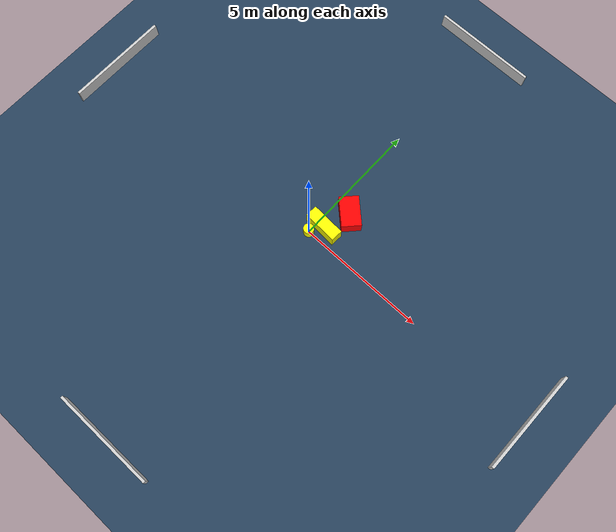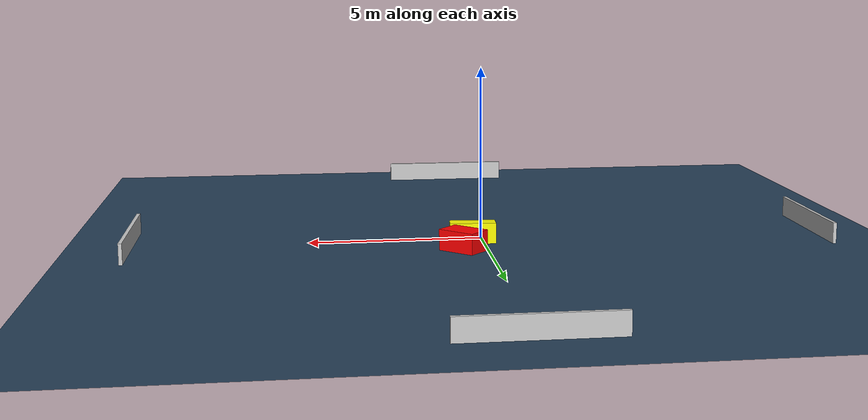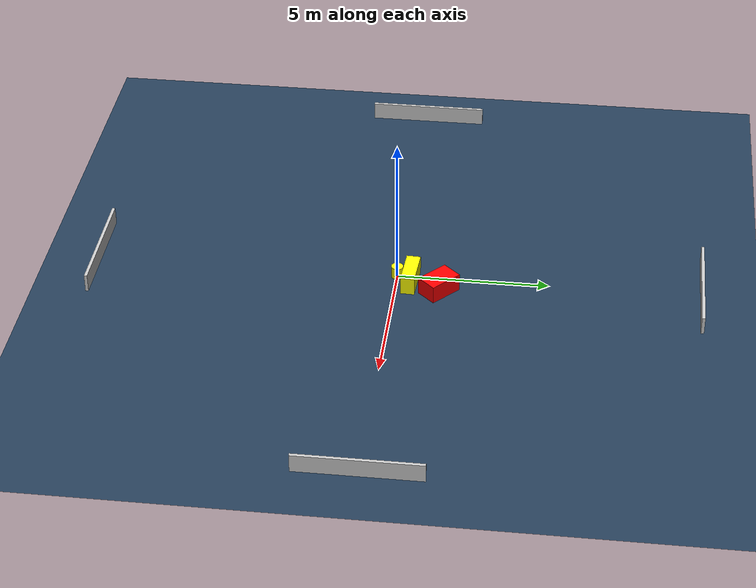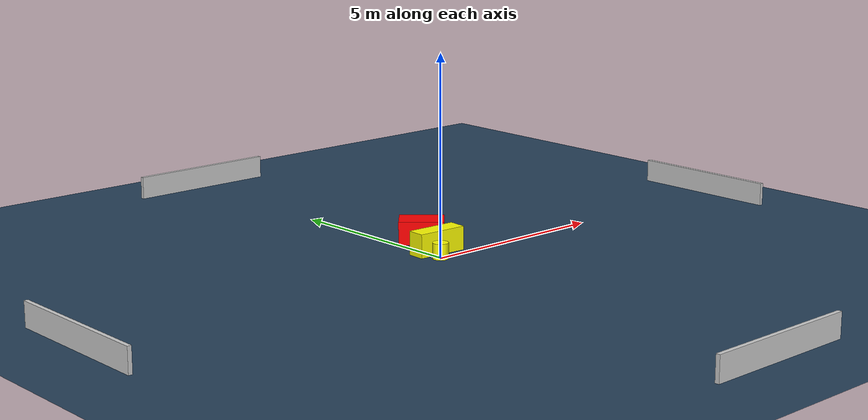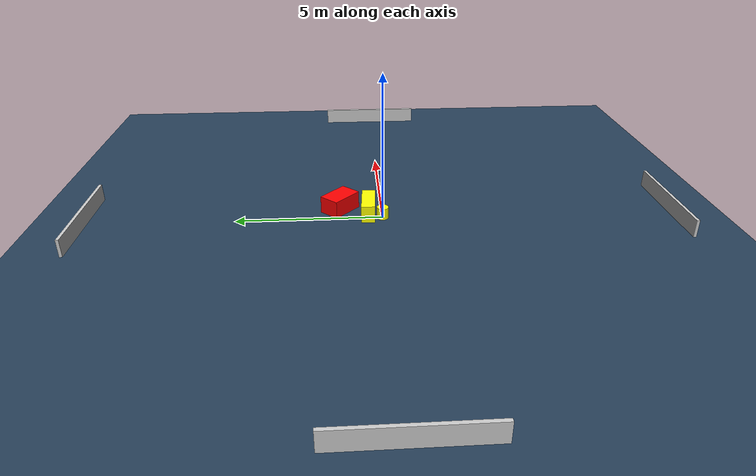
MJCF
<?xml version="1.0" ?>
<mujoco model="generated_environment">
  <option timestep="0.01" integrator="RK4" cone="elliptic"/>
  <default>
    <geom density="1"/>
  </default>
  <asset>
    <texture builtin="gradient" height="3072" name="skybox" rgb1="0.3 0.5 0.7" rgb2="0 0 0" type="skybox" width="512"/>
    <texture builtin="checker" height="300" name="groundplane" rgb1="0.2 0.3 0.4" rgb2="0.1 0.2 0.3" type="2d" width="300"/>
    <material name="groundplane" reflectance="0.2" texrepeat="5 5" texture="groundplane"/>
  </asset>
  <worldbody>
    <light dir="0 0 -1" directional="true" pos="0 0 1.5"/>
    <geom condim="3" friction="0.5 0.005 0.001" material="groundplane" name="floor" pos="0 0 0" size="0 0 0.05" type="plane"/>
    <body name="walls">
      <geom name="wall_1" condim="4" pos="-10.0 0.0 0.3" rgba="0.800000011920929 0.800000011920929 0.800000011920929 1.0" size="0.05 2.0 0.3" type="box"/>
      <geom name="wall_2" condim="4" pos="10.0 0.0 0.3" rgba="0.800000011920929 0.800000011920929 0.800000011920929 1.0" size="0.05 2.0 0.3" type="box"/>
      <geom name="wall_3" condim="4" pos="0.0 -10.0 0.3" rgba="0.800000011920929 0.800000011920929 0.800000011920929 1.0" size="2.0 0.05 0.3" type="box"/>
      <geom name="wall_4" condim="4" pos="0.0 10.0 0.3" rgba="0.800000011920929 0.800000011920929 0.800000011920929 1.0" size="2.0 0.05 0.3" type="box"/>
    </body>
    <body name="robot">
      <joint name="joint_x" type="slide" pos="0 0 0" axis="1 0 0"/>
      <joint name="joint_y" type="slide" pos="0 0 0" axis="0 1 0"/>
      <geom name="robot" type="cylinder" pos="0.0 0.0 0.2" size="0.2 0.2 0.0" mass="5.0" friction="1.0 0.005 0.0001" condim="4" rgba="1.0 1.0 0.0 1.0"/>
    </body>
    <body name="obstacle_1_movable">
      <geom name="obstacle_1_movable" condim="4" pos="0.30504507700257755 0.4706170308467061 0.3" euler="0 0 86.77950678102647" friction="0.0 0.005 0.001" rgba="1.0 1.0 0.0 1.0" size="0.23152014831173157 0.6595161651512307 0.3" type="box" mass="0.1"/>
      <joint type="free"/>
    </body>
    <body name="obstacle_2_static">
      <geom name="obstacle_2_static" condim="4" pos="0.6905023035106584 1.448357511396116 0.3" euler="0 0 317.0905996613612" friction="0.0 0.005 0.001" rgba="1.0 0.0 0.0 1.0" size="0.5719004769925191 0.36946584627468915 0.3" type="box"/>
    </body>
  </worldbody>
  <actuator>
    <motor name="actuator_x" joint="joint_x" gear="1" ctrlrange="-1 1"/>
    <motor name="actuator_y" joint="joint_y" gear="1" ctrlrange="-1 1"/>
  </actuator>
</mujoco>
